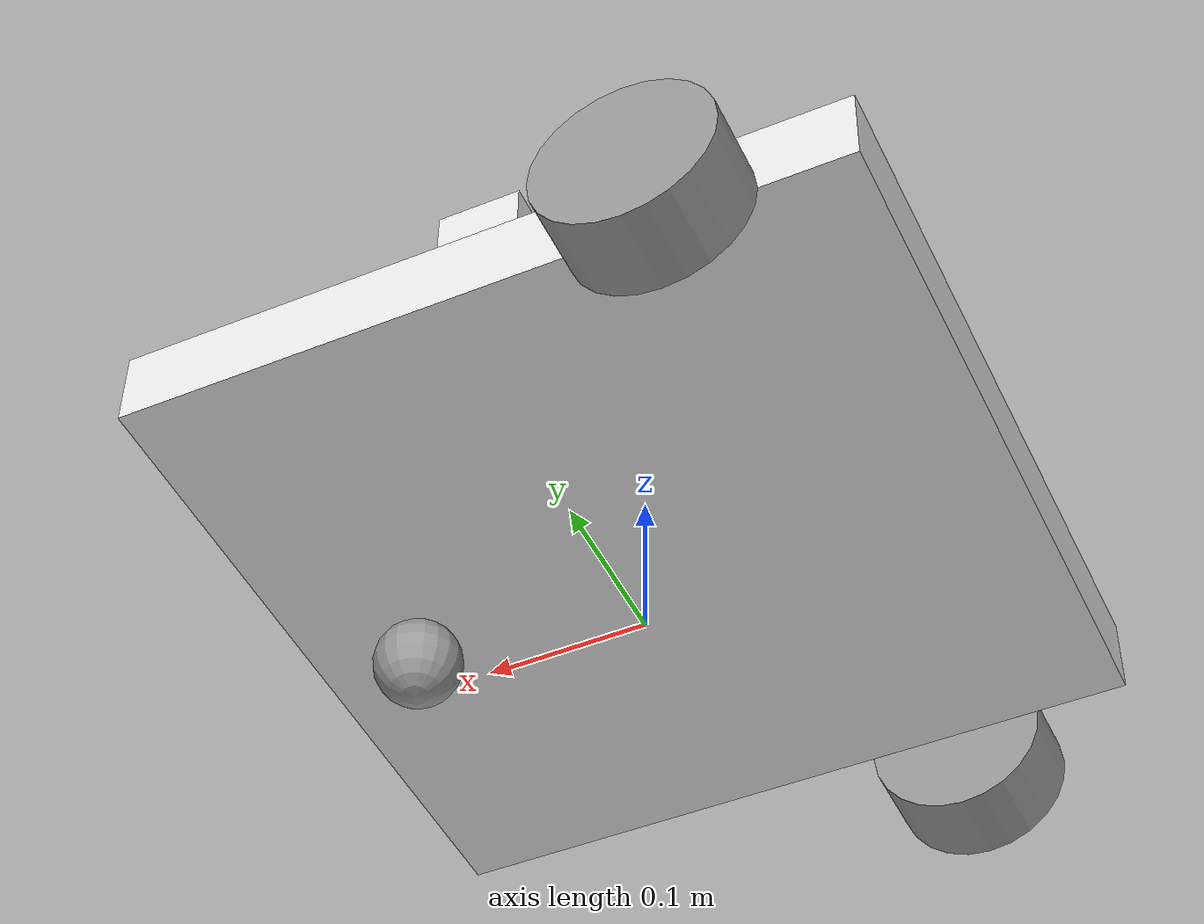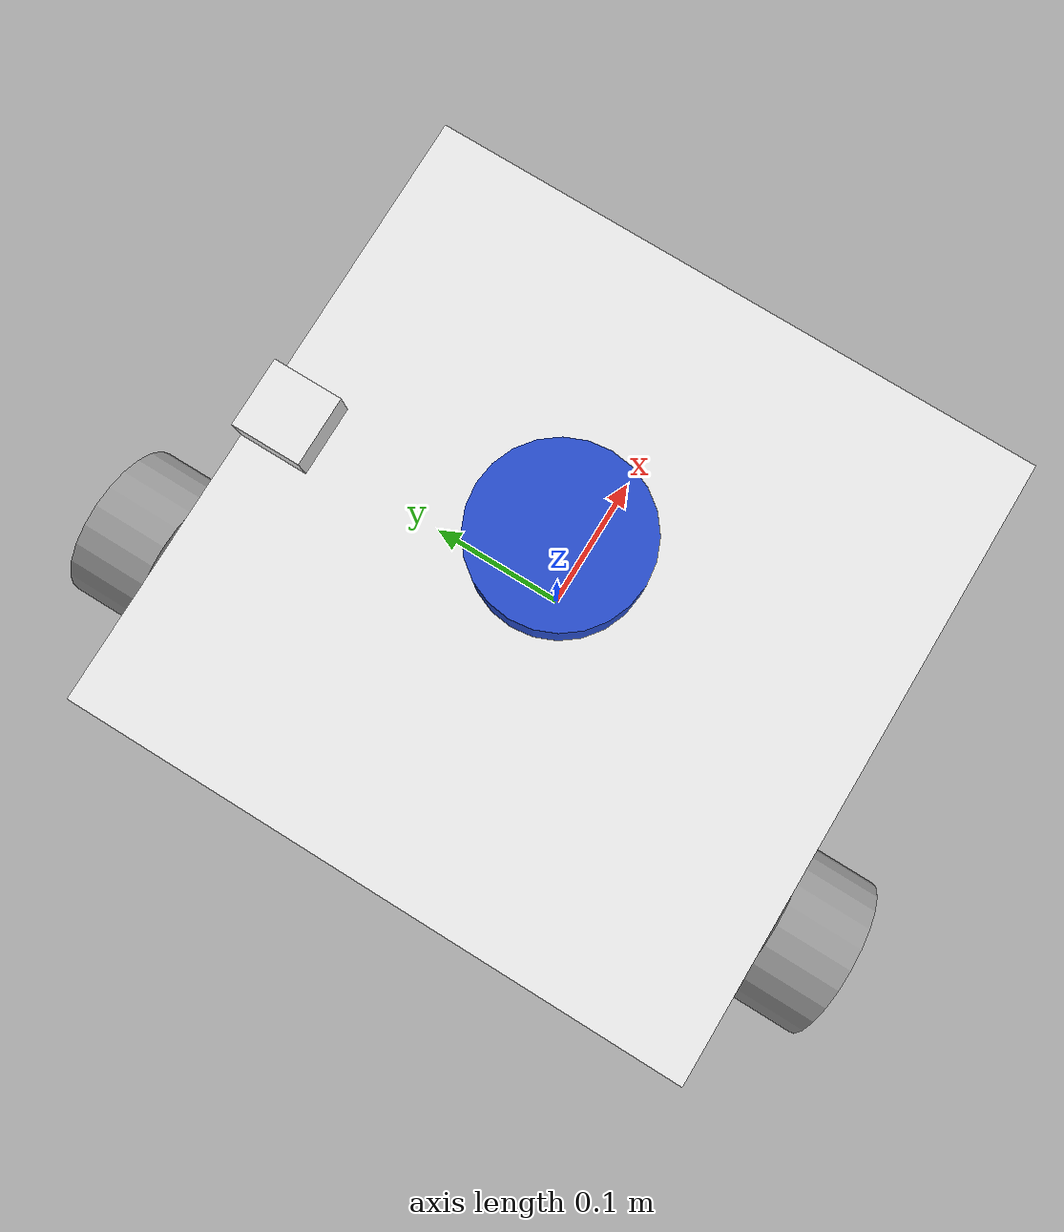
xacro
<?xml version="1.0"?>
<robot xmlns:xacro="http://www.ros.org/wiki/xacro">
    <xacro:property name="base_length" value="0.45"/>
    <xacro:property name="base_width" value="0.45"/>
    <xacro:property name="base_height" value="0.05"/>
    <xacro:property name="wheel_radius" value="0.055"/>
    <xacro:property name="wheel_length" value="0.052"/>
    <xacro:property name="caster_radius" value="${wheel_radius / 2.0}"/>

    <link name="base_footprint"/>

    <link name="base_link">
        <visual>
            <geometry>
                <box size="${base_length} ${base_width} ${base_height}"/>
            </geometry>
            <origin xyz="0 0 ${base_height / 2.0}" rpy="0 0 0"/>
            <material name="white"/>
        </visual>
        <xacro:box_inertia m="5.0" l="${2*base_length}" w="${2*base_width}" h="${2*base_height}"
         xyz="0 0 ${2*base_height / 2.0}" rpy="0 0 0" />
        <collision>
            <geometry>
                <box size="${base_length} ${base_width} ${base_height}"/>
            </geometry>
            <origin xyz="0 0 ${base_height / 2.0}" rpy="0 0 0"/>
        </collision>
    </link>

    <link name="imu_link">
        <visual>
            <geometry>
                <box size="0.05 0.05 0.05"/>
            </geometry>
            <material name="white"/>
        </visual>
        <xacro:box_inertia m="1.0" l="0.1" w="0.1" h="0.1"
         xyz="0 0 0.05" rpy="0 0 0" />
        <collision>
            <geometry>
                <box size="0.05 0.05 0.05"/>
            </geometry>
        </collision>
    </link>

    <xacro:macro name="wheel_link" params="prefix">
        <link name="${prefix}_wheel_link">
            <visual>
                <geometry>
                    <cylinder radius="${wheel_radius}" length="${wheel_length}"/>
                </geometry>
                <origin xyz="0 0 0" rpy="0 0 0"/>
                <material name ="grey"/>
            </visual>
            <xacro:cylinder_inertia m="1.0" r="${2*wheel_radius}" h="${2*wheel_length}" xyz="0 0 0" rpy="${pi/2.0} 0 0"/>
            <collision>
                <geometry>
                    <cylinder radius="${wheel_radius}" length="${wheel_length}"/>
                </geometry>
                <origin xyz="0 0 0" rpy="0 0 0"/>
            </collision>
        </link>
    </xacro:macro>
    <link name="laser_frame">
        <visual>
            <geometry>
                <cylinder radius="0.05" length="0.04"/>
            </geometry>
            <material name="blue"/>
        </visual>
        <collision>
            <geometry>
                <cylinder radius="0.05" length="0.04"/>
            </geometry>
        </collision>
        <xacro:cylinder_inertia m="1.0" r="0.05" h="0.04" xyz="0 0 0" rpy="0 0 0"/>
    </link>

    <xacro:wheel_link prefix="left"/>
    <xacro:wheel_link prefix="right"/>

    <link name="caster_wheel_link">
        <visual>
            <geometry>
                <sphere radius="${caster_radius}"/>
            </geometry>
            <origin xyz="0 0 0" rpy="0 0 0"/>
            <material name="grey"/>
        </visual>
        <xacro:sphere_inertia m="0.5" r="${2*caster_radius}" xyz="0 0 0" rpy="0 0 0" />
        <collision>
            <geometry>
                <sphere radius="${caster_radius}"/>
            </geometry>
            <origin xyz="0 0 0" rpy="0 0 0"/>
        </collision>
    </link>

    <joint name="base_joint" type="fixed">
        <parent link="base_footprint"/>
        <child link="base_link"/>
        <origin xyz="0 0 ${wheel_radius}" rpy="0 0 0"/>
    </joint>

    <joint name="right_wheel_joint" type="continuous">
        <parent link="base_link"/>
        <child link="right_wheel_link"/>
        <origin xyz="${-base_length / 4.0} ${-((base_width / 2.0) + (wheel_length/2.0))} 0" rpy="${pi/2} 0 0"/>
        <axis xyz="0 0 1"/>
        <limit velocity="100" effort="100"/>
    </joint>
    <joint name="laser_joint" type="fixed">
        <parent link="base_link"/>
        <child link="laser_frame"/>
        <origin xyz="0.0 0.0 0.2" rpy="0 0 0"/>
        <axis xyz="0 0 0"/>
        <limit velocity="100" effort="100"/>
    </joint>
    <joint name="imu_joint" type="fixed">
        <parent link="base_link"/>
        <child link="imu_link"/>
        <origin xyz="0.0 0.2 0.05" rpy="0 0 0"/>
        <axis xyz="0 0 0"/>
        <limit velocity="100" effort="100"/>
    </joint>

    <joint name="left_wheel_joint" type="continuous">
        <parent link="base_link"/>
        <child link="left_wheel_link"/>
        <origin xyz="${-base_length / 4.0} ${(base_width / 2.0) + (wheel_length/2.0)} 0" rpy="-${pi/2} 0 0"/>
        <axis xyz="0 0 1"/>
        <limit velocity="100" effort="100"/>
    </joint>

    <joint name="base_caster_wheel_joint" type="fixed">
        <parent link="base_link"/>
        <child link="caster_wheel_link"/>
        <origin xyz="${base_length / 3.0} 0 ${-caster_radius}" rpy="0 0 0"/>
    </joint>
</robot>
